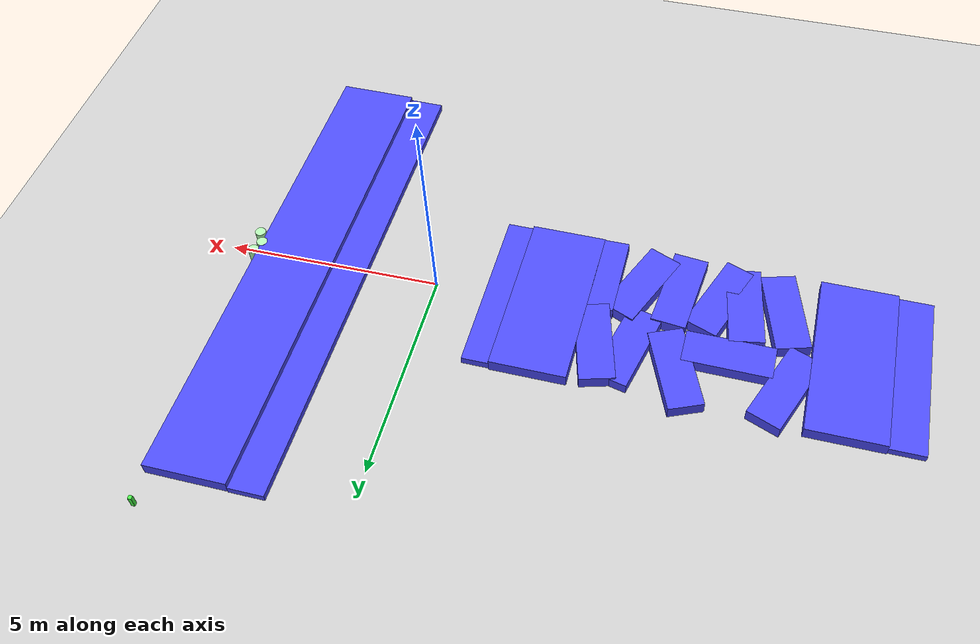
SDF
<sdf version="1.7">
 <world name="default">
  <model name="ground_plane">
   <static>1</static>
   <link name="link">
    <collision name="collision">
     <geometry><plane><normal>0 0 1</normal><size>100 100</size></plane></geometry>
     <surface><friction><ode><mu>100</mu><mu2>50</mu2></ode></friction></surface>
    </collision>
    <visual name="visual">
     <cast_shadows>0</cast_shadows>
     <geometry><plane><normal>0 0 1</normal><size>100 100</size></plane></geometry>
     <material>
      <script><uri>file://media/materials/scripts/gazebo.material</uri><name>Gazebo/Grey</name></script>
     </material>
    </visual>
   </link>
  </model>
  <model name="ban_400_80_30">
   <link name="link">
    <inertial>
     <mass>1</mass>
     <inertia>
      <ixx>0.166667</ixx>
      <ixy>0</ixy>
      <ixz>0</ixz>
      <iyy>0.166667</iyy>
      <iyz>0</iyz>
      <izz>0.166667</izz>
     </inertia>
    </inertial>
    <visual name="visual">
     <geometry><box><size>11.7457 0.8 0.3</size></box></geometry>
     <material>
      <script><name>Gazebo/Grey</name><uri>file://media/materials/scripts/gazebo.material</uri></script>
      <shader type="pixel"><normal_map>__default__</normal_map></shader>
      <ambient>0.3 0.3 1 1</ambient>
      <diffuse>0.7 0.7 0.7 1</diffuse>
      <specular>0.01 0.01 0.01 1</specular>
      <emissive>0 0 0 1</emissive>
     </material>
    </visual>
    <collision name="collision">
     <geometry><box><size>11.7457 0.8 0.3</size></box></geometry>
     <surface>
      <friction>
       <ode><mu>1</mu><mu2>1</mu2><fdir1>0 0 0</fdir1><slip1>0</slip1><slip2>0</slip2></ode>
       <torsional>
        <coefficient>1</coefficient>
        <patch_radius>0</patch_radius>
        <surface_radius>0</surface_radius>
        <use_patch_radius>1</use_patch_radius>
        <ode><slip>0</slip></ode>
       </torsional>
      </friction>
      <bounce><restitution_coefficient>0</restitution_coefficient><threshold>1e+06</threshold></bounce>
      <contact>
       <collide_without_contact>0</collide_without_contact>
       <collide_without_contact_bitmask>1</collide_without_contact_bitmask>
       <collide_bitmask>1</collide_bitmask>
       <ode>
        <soft_cfm>0</soft_cfm>
        <soft_erp>0.2</soft_erp>
        <kp>1e+13</kp>
        <kd>1</kd>
        <max_vel>0.01</max_vel>
        <min_depth>0</min_depth>
       </ode>
       <bullet>
        <split_impulse>1</split_impulse>
        <split_impulse_penetration_threshold>-0.01</split_impulse_penetration_threshold>
        <soft_cfm>0</soft_cfm>
        <soft_erp>0.2</soft_erp>
        <kp>1e+13</kp>
        <kd>1</kd>
       </bullet>
      </contact>
     </surface>
    </collision>
   </link>
   <static>1</static>
   <pose>2.06865 0.167126 0 0 -0 1.55763</pose>
  </model>
  <model name="ban_400_80_30_clone_1_clone_0">
   <link name="link">
    <inertial>
     <mass>1</mass>
     <inertia>
      <ixx>0.166667</ixx>
      <ixy>0</ixy>
      <ixz>0</ixz>
      <iyy>0.166667</iyy>
      <iyz>0</iyz>
      <izz>0.166667</izz>
     </inertia>
    </inertial>
    <visual name="visual">
     <geometry><box><size>4 0.8 0.3</size></box></geometry>
     <material>
      <script><name>Gazebo/Grey</name><uri>file://media/materials/scripts/gazebo.material</uri></script>
      <shader type="pixel"><normal_map>__default__</normal_map></shader>
      <ambient>0.3 0.3 1 1</ambient>
      <diffuse>0.7 0.7 0.7 1</diffuse>
      <specular>0.01 0.01 0.01 1</specular>
      <emissive>0 0 0 1</emissive>
     </material>
    </visual>
    <collision name="collision">
     <geometry><box><size>4 0.8 0.3</size></box></geometry>
     <surface>
      <friction>
       <ode><mu>1</mu><mu2>1</mu2><fdir1>0 0 0</fdir1><slip1>0</slip1><slip2>0</slip2></ode>
       <torsional>
        <coefficient>1</coefficient>
        <patch_radius>0</patch_radius>
        <surface_radius>0</surface_radius>
        <use_patch_radius>1</use_patch_radius>
        <ode><slip>0</slip></ode>
       </torsional>
      </friction>
      <bounce><restitution_coefficient>0</restitution_coefficient><threshold>1e+06</threshold></bounce>
      <contact>
       <collide_without_contact>0</collide_without_contact>
       <collide_without_contact_bitmask>1</collide_without_contact_bitmask>
       <collide_bitmask>1</collide_bitmask>
       <ode>
        <soft_cfm>0</soft_cfm>
        <soft_erp>0.2</soft_erp>
        <kp>1e+13</kp>
        <kd>1</kd>
        <max_vel>0.01</max_vel>
        <min_depth>0</min_depth>
       </ode>
       <bullet>
        <split_impulse>1</split_impulse>
        <split_impulse_penetration_threshold>-0.01</split_impulse_penetration_threshold>
        <soft_cfm>0</soft_cfm>
        <soft_erp>0.2</soft_erp>
        <kp>1e+13</kp>
        <kd>1</kd>
       </bullet>
      </contact>
     </surface>
    </collision>
   </link>
   <static>1</static>
   <pose>-1.57197 -0.048811 0.008853 0 -0 1.55763</pose>
  </model>
  <model name="ban_400_80_30_clone_1_clone_1">
   <link name="link">
    <inertial>
     <mass>1</mass>
     <inertia>
      <ixx>0.166667</ixx>
      <ixy>0</ixy>
      <ixz>0</ixz>
      <iyy>0.166667</iyy>
      <iyz>0</iyz>
      <izz>0.166667</izz>
     </inertia>
    </inertial>
    <visual name="visual">
     <geometry><box><size>4 1.73091 0.3</size></box></geometry>
     <material>
      <script><name>Gazebo/Grey</name><uri>file://media/materials/scripts/gazebo.material</uri></script>
      <shader type="pixel"><normal_map>__default__</normal_map></shader>
      <ambient>0.3 0.3 1 1</ambient>
      <diffuse>0.7 0.7 0.7 1</diffuse>
      <specular>0.01 0.01 0.01 1</specular>
      <emissive>0 0 0 1</emissive>
     </material>
    </visual>
    <collision name="collision">
     <geometry><box><size>4 1.73091 0.3</size></box></geometry>
     <surface>
      <friction>
       <ode><mu>1</mu><mu2>1</mu2><fdir1>0 0 0</fdir1><slip1>0</slip1><slip2>0</slip2></ode>
       <torsional>
        <coefficient>1</coefficient>
        <patch_radius>0</patch_radius>
        <surface_radius>0</surface_radius>
        <use_patch_radius>1</use_patch_radius>
        <ode><slip>0</slip></ode>
       </torsional>
      </friction>
      <bounce><restitution_coefficient>0</restitution_coefficient><threshold>1e+06</threshold></bounce>
      <contact>
       <collide_without_contact>0</collide_without_contact>
       <collide_without_contact_bitmask>1</collide_without_contact_bitmask>
       <collide_bitmask>1</collide_bitmask>
       <ode>
        <soft_cfm>0</soft_cfm>
        <soft_erp>0.2</soft_erp>
        <kp>1e+13</kp>
        <kd>1</kd>
        <max_vel>0.01</max_vel>
        <min_depth>0</min_depth>
       </ode>
       <bullet>
        <split_impulse>1</split_impulse>
        <split_impulse_penetration_threshold>-0.01</split_impulse_penetration_threshold>
        <soft_cfm>0</soft_cfm>
        <soft_erp>0.2</soft_erp>
        <kp>1e+13</kp>
        <kd>1</kd>
       </bullet>
      </contact>
     </surface>
    </collision>
   </link>
   <static>1</static>
   <pose>-2.65947 -0.004283 0.133573 0 -0 1.55763</pose>
  </model>
  <model name="ban_200_80_30_clone_8">
   <link name="link">
    <inertial>
     <mass>1</mass>
     <inertia>
      <ixx>0.166667</ixx>
      <ixy>0</ixy>
      <ixz>0</ixz>
      <iyy>0.166667</iyy>
      <iyz>0</iyz>
      <izz>0.166667</izz>
     </inertia>
    </inertial>
    <visual name="visual">
     <geometry><box><size>2 0.8 0.3</size></box></geometry>
     <material>
      <script><name>Gazebo/Grey</name><uri>file://media/materials/scripts/gazebo.material</uri></script>
      <shader type="pixel"><normal_map>__default__</normal_map></shader>
      <ambient>0.3 0.3 1 1</ambient>
      <diffuse>0.7 0.7 0.7 1</diffuse>
      <specular>0.01 0.01 0.01 1</specular>
      <emissive>0 0 0 1</emissive>
     </material>
    </visual>
    <collision name="collision">
     <geometry><box><size>2 0.8 0.3</size></box></geometry>
     <surface>
      <friction>
       <ode><mu>1</mu><mu2>1</mu2><fdir1>0 0 0</fdir1><slip1>0</slip1><slip2>0</slip2></ode>
       <torsional>
        <coefficient>1</coefficient>
        <patch_radius>0</patch_radius>
        <surface_radius>0</surface_radius>
        <use_patch_radius>1</use_patch_radius>
        <ode><slip>0</slip></ode>
       </torsional>
      </friction>
      <bounce><restitution_coefficient>0</restitution_coefficient><threshold>1e+06</threshold></bounce>
      <contact>
       <collide_without_contact>0</collide_without_contact>
       <collide_without_contact_bitmask>1</collide_without_contact_bitmask>
       <collide_bitmask>1</collide_bitmask>
       <ode>
        <soft_cfm>0</soft_cfm>
        <soft_erp>0.2</soft_erp>
        <kp>1e+13</kp>
        <kd>1</kd>
        <max_vel>0.01</max_vel>
        <min_depth>0</min_depth>
       </ode>
       <bullet>
        <split_impulse>1</split_impulse>
        <split_impulse_penetration_threshold>-0.01</split_impulse_penetration_threshold>
        <soft_cfm>0</soft_cfm>
        <soft_erp>0.2</soft_erp>
        <kp>1e+13</kp>
        <kd>1</kd>
       </bullet>
      </contact>
     </surface>
    </collision>
   </link>
   <static>1</static>
   <pose>-3.72567 -0.97739 0.127404 0 0 -1.57453</pose>
  </model>
  <model name="ban_200_80_30_clone_clone_clone">
   <link name="link">
    <inertial>
     <mass>1</mass>
     <inertia>
      <ixx>0.166667</ixx>
      <ixy>0</ixy>
      <ixz>0</ixz>
      <iyy>0.166667</iyy>
      <iyz>0</iyz>
      <izz>0.166667</izz>
     </inertia>
    </inertial>
    <visual name="visual">
     <geometry><box><size>2 0.8 0.3</size></box></geometry>
     <material>
      <script><name>Gazebo/Grey</name><uri>file://media/materials/scripts/gazebo.material</uri></script>
      <shader type="pixel"><normal_map>__default__</normal_map></shader>
      <ambient>0.3 0.3 1 1</ambient>
      <diffuse>0.7 0.7 0.7 1</diffuse>
      <specular>0.01 0.01 0.01 1</specular>
      <emissive>0 0 0 1</emissive>
     </material>
    </visual>
    <collision name="collision">
     <geometry><box><size>2 0.8 0.3</size></box></geometry>
     <surface>
      <friction>
       <ode><mu>1</mu><mu2>1</mu2><fdir1>0 0 0</fdir1><slip1>0</slip1><slip2>0</slip2></ode>
       <torsional>
        <coefficient>1</coefficient>
        <patch_radius>0</patch_radius>
        <surface_radius>0</surface_radius>
        <use_patch_radius>1</use_patch_radius>
        <ode><slip>0</slip></ode>
       </torsional>
      </friction>
      <bounce><restitution_coefficient>0</restitution_coefficient><threshold>1e+06</threshold></bounce>
      <contact>
       <collide_without_contact>0</collide_without_contact>
       <collide_without_contact_bitmask>1</collide_without_contact_bitmask>
       <collide_bitmask>1</collide_bitmask>
       <ode>
        <soft_cfm>0</soft_cfm>
        <soft_erp>0.2</soft_erp>
        <kp>1e+13</kp>
        <kd>1</kd>
        <max_vel>0.01</max_vel>
        <min_depth>0</min_depth>
       </ode>
       <bullet>
        <split_impulse>1</split_impulse>
        <split_impulse_penetration_threshold>-0.01</split_impulse_penetration_threshold>
        <soft_cfm>0</soft_cfm>
        <soft_erp>0.2</soft_erp>
        <kp>1e+13</kp>
        <kd>1</kd>
       </bullet>
      </contact>
     </surface>
    </collision>
   </link>
   <static>1</static>
   <pose>-3.88933 0.920751 0.132586 0 0 -1.30462</pose>
  </model>
  <model name="ban_200_80_30_clone_8_clone">
   <link name="link">
    <inertial>
     <mass>1</mass>
     <inertia>
      <ixx>0.166667</ixx>
      <ixy>0</ixy>
      <ixz>0</ixz>
      <iyy>0.166667</iyy>
      <iyz>0</iyz>
      <izz>0.166667</izz>
     </inertia>
    </inertial>
    <visual name="visual">
     <geometry><box><size>2 0.8 0.3</size></box></geometry>
     <material>
      <script><name>Gazebo/Grey</name><uri>file://media/materials/scripts/gazebo.material</uri></script>
      <shader type="pixel"><normal_map>__default__</normal_map></shader>
      <ambient>0.3 0.3 1 1</ambient>
      <diffuse>0.7 0.7 0.7 1</diffuse>
      <specular>0.01 0.01 0.01 1</specular>
      <emissive>0 0 0 1</emissive>
     </material>
    </visual>
    <collision name="collision">
     <geometry><box><size>2 0.8 0.3</size></box></geometry>
     <surface>
      <friction>
       <ode><mu>1</mu><mu2>1</mu2><fdir1>0 0 0</fdir1><slip1>0</slip1><slip2>0</slip2></ode>
       <torsional>
        <coefficient>1</coefficient>
        <patch_radius>0</patch_radius>
        <surface_radius>0</surface_radius>
        <use_patch_radius>1</use_patch_radius>
        <ode><slip>0</slip></ode>
       </torsional>
      </friction>
      <bounce><restitution_coefficient>0</restitution_coefficient><threshold>1e+06</threshold></bounce>
      <contact>
       <collide_without_contact>0</collide_without_contact>
       <collide_without_contact_bitmask>1</collide_without_contact_bitmask>
       <collide_bitmask>1</collide_bitmask>
       <ode>
        <soft_cfm>0</soft_cfm>
        <soft_erp>0.2</soft_erp>
        <kp>1e+13</kp>
        <kd>1</kd>
        <max_vel>0.01</max_vel>
        <min_depth>0</min_depth>
       </ode>
       <bullet>
        <split_impulse>1</split_impulse>
        <split_impulse_penetration_threshold>-0.01</split_impulse_penetration_threshold>
        <soft_cfm>0</soft_cfm>
        <soft_erp>0.2</soft_erp>
        <kp>1e+13</kp>
        <kd>1</kd>
       </bullet>
      </contact>
     </surface>
    </collision>
   </link>
   <static>1</static>
   <pose>-4.62871 -0.899774 0.127404 0 0 -1.97874</pose>
  </model>
  <model name="ban_200_80_30_clone_8_clone_0">
   <link name="link">
    <inertial>
     <mass>1</mass>
     <inertia>
      <ixx>0.166667</ixx>
      <ixy>0</ixy>
      <ixz>0</ixz>
      <iyy>0.166667</iyy>
      <iyz>0</iyz>
      <izz>0.166667</izz>
     </inertia>
    </inertial>
    <visual name="visual">
     <geometry><box><size>2 0.8 0.3</size></box></geometry>
     <material>
      <script><name>Gazebo/Grey</name><uri>file://media/materials/scripts/gazebo.material</uri></script>
      <shader type="pixel"><normal_map>__default__</normal_map></shader>
      <ambient>0.3 0.3 1 1</ambient>
      <diffuse>0.7 0.7 0.7 1</diffuse>
      <specular>0.01 0.01 0.01 1</specular>
      <emissive>0 0 0 1</emissive>
     </material>
    </visual>
    <collision name="collision">
     <geometry><box><size>2 0.8 0.3</size></box></geometry>
     <surface>
      <friction>
       <ode><mu>1</mu><mu2>1</mu2><fdir1>0 0 0</fdir1><slip1>0</slip1><slip2>0</slip2></ode>
       <torsional>
        <coefficient>1</coefficient>
        <patch_radius>0</patch_radius>
        <surface_radius>0</surface_radius>
        <use_patch_radius>1</use_patch_radius>
        <ode><slip>0</slip></ode>
       </torsional>
      </friction>
      <bounce><restitution_coefficient>0</restitution_coefficient><threshold>1e+06</threshold></bounce>
      <contact>
       <collide_without_contact>0</collide_without_contact>
       <collide_without_contact_bitmask>1</collide_without_contact_bitmask>
       <collide_bitmask>1</collide_bitmask>
       <ode>
        <soft_cfm>0</soft_cfm>
        <soft_erp>0.2</soft_erp>
        <kp>1e+13</kp>
        <kd>1</kd>
        <max_vel>0.01</max_vel>
        <min_depth>0</min_depth>
       </ode>
       <bullet>
        <split_impulse>1</split_impulse>
        <split_impulse_penetration_threshold>-0.01</split_impulse_penetration_threshold>
        <soft_cfm>0</soft_cfm>
        <soft_erp>0.2</soft_erp>
        <kp>1e+13</kp>
        <kd>1</kd>
       </bullet>
      </contact>
     </surface>
    </collision>
   </link>
   <static>1</static>
   <pose>-4.633 0.844905 0.090917 0 0 -1.81122</pose>
  </model>
  <model name="ban_200_80_30_clone_8_clone_1">
   <link name="link">
    <inertial>
     <mass>1</mass>
     <inertia>
      <ixx>0.166667</ixx>
      <ixy>0</ixy>
      <ixz>0</ixz>
      <iyy>0.166667</iyy>
      <iyz>0</iyz>
      <izz>0.166667</izz>
     </inertia>
    </inertial>
    <visual name="visual">
     <geometry><box><size>2 0.8 0.3</size></box></geometry>
     <material>
      <script><name>Gazebo/Grey</name><uri>file://media/materials/scripts/gazebo.material</uri></script>
      <shader type="pixel"><normal_map>__default__</normal_map></shader>
      <ambient>0.3 0.3 1 1</ambient>
      <diffuse>0.7 0.7 0.7 1</diffuse>
      <specular>0.01 0.01 0.01 1</specular>
      <emissive>0 0 0 1</emissive>
     </material>
    </visual>
    <collision name="collision">
     <geometry><box><size>2 0.8 0.3</size></box></geometry>
     <surface>
      <friction>
       <ode><mu>1</mu><mu2>1</mu2><fdir1>0 0 0</fdir1><slip1>0</slip1><slip2>0</slip2></ode>
       <torsional>
        <coefficient>1</coefficient>
        <patch_radius>0</patch_radius>
        <surface_radius>0</surface_radius>
        <use_patch_radius>1</use_patch_radius>
        <ode><slip>0</slip></ode>
       </torsional>
      </friction>
      <bounce><restitution_coefficient>0</restitution_coefficient><threshold>1e+06</threshold></bounce>
      <contact>
       <collide_without_contact>0</collide_without_contact>
       <collide_without_contact_bitmask>1</collide_without_contact_bitmask>
       <collide_bitmask>1</collide_bitmask>
       <ode>
        <soft_cfm>0</soft_cfm>
        <soft_erp>0.2</soft_erp>
        <kp>1e+13</kp>
        <kd>1</kd>
        <max_vel>0.01</max_vel>
        <min_depth>0</min_depth>
       </ode>
       <bullet>
        <split_impulse>1</split_impulse>
        <split_impulse_penetration_threshold>-0.01</split_impulse_penetration_threshold>
        <soft_cfm>0</soft_cfm>
        <soft_erp>0.2</soft_erp>
        <kp>1e+13</kp>
        <kd>1</kd>
       </bullet>
      </contact>
     </surface>
    </collision>
   </link>
   <static>1</static>
   <pose>-5.73665 1.22455 0.127404 0 0 -1.18182</pose>
  </model>
  <model name="ban_200_80_30_clone_8_clone_2">
   <link name="link">
    <inertial>
     <mass>1</mass>
     <inertia>
      <ixx>0.166667</ixx>
      <ixy>0</ixy>
      <ixz>0</ixz>
      <iyy>0.166667</iyy>
      <iyz>0</iyz>
      <izz>0.166667</izz>
     </inertia>
    </inertial>
    <visual name="visual">
     <geometry><box><size>2 0.8 0.3</size></box></geometry>
     <material>
      <script><name>Gazebo/Grey</name><uri>file://media/materials/scripts/gazebo.material</uri></script>
      <shader type="pixel"><normal_map>__default__</normal_map></shader>
      <ambient>0.3 0.3 1 1</ambient>
      <diffuse>0.7 0.7 0.7 1</diffuse>
      <specular>0.01 0.01 0.01 1</specular>
      <emissive>0 0 0 1</emissive>
     </material>
    </visual>
    <collision name="collision">
     <geometry><box><size>2 0.8 0.3</size></box></geometry>
     <surface>
      <friction>
       <ode><mu>1</mu><mu2>1</mu2><fdir1>0 0 0</fdir1><slip1>0</slip1><slip2>0</slip2></ode>
       <torsional>
        <coefficient>1</coefficient>
        <patch_radius>0</patch_radius>
        <surface_radius>0</surface_radius>
        <use_patch_radius>1</use_patch_radius>
        <ode><slip>0</slip></ode>
       </torsional>
      </friction>
      <bounce><restitution_coefficient>0</restitution_coefficient><threshold>1e+06</threshold></bounce>
      <contact>
       <collide_without_contact>0</collide_without_contact>
       <collide_without_contact_bitmask>1</collide_without_contact_bitmask>
       <collide_bitmask>1</collide_bitmask>
       <ode>
        <soft_cfm>0</soft_cfm>
        <soft_erp>0.2</soft_erp>
        <kp>1e+13</kp>
        <kd>1</kd>
        <max_vel>0.01</max_vel>
        <min_depth>0</min_depth>
       </ode>
       <bullet>
        <split_impulse>1</split_impulse>
        <split_impulse_penetration_threshold>-0.01</split_impulse_penetration_threshold>
        <soft_cfm>0</soft_cfm>
        <soft_erp>0.2</soft_erp>
        <kp>1e+13</kp>
        <kd>1</kd>
       </bullet>
      </contact>
     </surface>
    </collision>
   </link>
   <static>1</static>
   <pose>-5.49836 -0.904422 0.127404 0 0 -1.68677</pose>
  </model>
  <model name="ban_200_80_30_clone_8_clone_3">
   <link name="link">
    <inertial>
     <mass>1</mass>
     <inertia>
      <ixx>0.166667</ixx>
      <ixy>0</ixy>
      <ixz>0</ixz>
      <iyy>0.166667</iyy>
      <iyz>0</iyz>
      <izz>0.166667</izz>
     </inertia>
    </inertial>
    <visual name="visual">
     <geometry><box><size>2 0.8 0.3</size></box></geometry>
     <material>
      <script><name>Gazebo/Grey</name><uri>file://media/materials/scripts/gazebo.material</uri></script>
      <shader type="pixel"><normal_map>__default__</normal_map></shader>
      <ambient>0.3 0.3 1 1</ambient>
      <diffuse>0.7 0.7 0.7 1</diffuse>
      <specular>0.01 0.01 0.01 1</specular>
      <emissive>0 0 0 1</emissive>
     </material>
    </visual>
    <collision name="collision">
     <geometry><box><size>2 0.8 0.3</size></box></geometry>
     <surface>
      <friction>
       <ode><mu>1</mu><mu2>1</mu2><fdir1>0 0 0</fdir1><slip1>0</slip1><slip2>0</slip2></ode>
       <torsional>
        <coefficient>1</coefficient>
        <patch_radius>0</patch_radius>
        <surface_radius>0</surface_radius>
        <use_patch_radius>1</use_patch_radius>
        <ode><slip>0</slip></ode>
       </torsional>
      </friction>
      <bounce><restitution_coefficient>0</restitution_coefficient><threshold>1e+06</threshold></bounce>
      <contact>
       <collide_without_contact>0</collide_without_contact>
       <collide_without_contact_bitmask>1</collide_without_contact_bitmask>
       <collide_bitmask>1</collide_bitmask>
       <ode>
        <soft_cfm>0</soft_cfm>
        <soft_erp>0.2</soft_erp>
        <kp>1e+13</kp>
        <kd>1</kd>
        <max_vel>0.01</max_vel>
        <min_depth>0</min_depth>
       </ode>
       <bullet>
        <split_impulse>1</split_impulse>
        <split_impulse_penetration_threshold>-0.01</split_impulse_penetration_threshold>
        <soft_cfm>0</soft_cfm>
        <soft_erp>0.2</soft_erp>
        <kp>1e+13</kp>
        <kd>1</kd>
       </bullet>
      </contact>
     </surface>
    </collision>
   </link>
   <static>1</static>
   <pose>-6.45605 -0.8792 0.127404 0 0 -1.94218</pose>
  </model>
  <model name="ban_200_80_30_clone_8_clone_clone">
   <link name="link">
    <inertial>
     <mass>1</mass>
     <inertia>
      <ixx>0.166667</ixx>
      <ixy>0</ixy>
      <ixz>0</ixz>
      <iyy>0.166667</iyy>
      <iyz>0</iyz>
      <izz>0.166667</izz>
     </inertia>
    </inertial>
    <visual name="visual">
     <geometry><box><size>2 0.8 0.3</size></box></geometry>
     <material>
      <script><name>Gazebo/Grey</name><uri>file://media/materials/scripts/gazebo.material</uri></script>
      <shader type="pixel"><normal_map>__default__</normal_map></shader>
      <ambient>0.3 0.3 1 1</ambient>
      <diffuse>0.7 0.7 0.7 1</diffuse>
      <specular>0.01 0.01 0.01 1</specular>
      <emissive>0 0 0 1</emissive>
     </material>
    </visual>
    <collision name="collision">
     <geometry><box><size>2 0.8 0.3</size></box></geometry>
     <surface>
      <friction>
       <ode><mu>1</mu><mu2>1</mu2><fdir1>0 0 0</fdir1><slip1>0</slip1><slip2>0</slip2></ode>
       <torsional>
        <coefficient>1</coefficient>
        <patch_radius>0</patch_radius>
        <surface_radius>0</surface_radius>
        <use_patch_radius>1</use_patch_radius>
        <ode><slip>0</slip></ode>
       </torsional>
      </friction>
      <bounce><restitution_coefficient>0</restitution_coefficient><threshold>1e+06</threshold></bounce>
      <contact>
       <collide_without_contact>0</collide_without_contact>
       <collide_without_contact_bitmask>1</collide_without_contact_bitmask>
       <collide_bitmask>1</collide_bitmask>
       <ode>
        <soft_cfm>0</soft_cfm>
        <soft_erp>0.2</soft_erp>
        <kp>1e+13</kp>
        <kd>1</kd>
        <max_vel>0.01</max_vel>
        <min_depth>0</min_depth>
       </ode>
       <bullet>
        <split_impulse>1</split_impulse>
        <split_impulse_penetration_threshold>-0.01</split_impulse_penetration_threshold>
        <soft_cfm>0</soft_cfm>
        <soft_erp>0.2</soft_erp>
        <kp>1e+13</kp>
        <kd>1</kd>
       </bullet>
      </contact>
     </surface>
    </collision>
   </link>
   <static>1</static>
   <pose>-6.81115 0.60983 0.127404 0 -0 3.12114</pose>
  </model>
  <model name="ban_200_80_30_clone_8_clone_4">
   <link name="link">
    <inertial>
     <mass>1</mass>
     <inertia>
      <ixx>0.166667</ixx>
      <ixy>0</ixy>
      <ixz>0</ixz>
      <iyy>0.166667</iyy>
      <iyz>0</iyz>
      <izz>0.166667</izz>
     </inertia>
    </inertial>
    <visual name="visual">
     <geometry><box><size>2 0.8 0.3</size></box></geometry>
     <material>
      <script><name>Gazebo/Grey</name><uri>file://media/materials/scripts/gazebo.material</uri></script>
      <shader type="pixel"><normal_map>__default__</normal_map></shader>
      <ambient>0.3 0.3 1 1</ambient>
      <diffuse>0.7 0.7 0.7 1</diffuse>
      <specular>0.01 0.01 0.01 1</specular>
      <emissive>0 0 0 1</emissive>
     </material>
    </visual>
    <collision name="collision">
     <geometry><box><size>2 0.8 0.3</size></box></geometry>
     <surface>
      <friction>
       <ode><mu>1</mu><mu2>1</mu2><fdir1>0 0 0</fdir1><slip1>0</slip1><slip2>0</slip2></ode>
       <torsional>
        <coefficient>1</coefficient>
        <patch_radius>0</patch_radius>
        <surface_radius>0</surface_radius>
        <use_patch_radius>1</use_patch_radius>
        <ode><slip>0</slip></ode>
       </torsional>
      </friction>
      <bounce><restitution_coefficient>0</restitution_coefficient><threshold>1e+06</threshold></bounce>
      <contact>
       <collide_without_contact>0</collide_without_contact>
       <collide_without_contact_bitmask>1</collide_without_contact_bitmask>
       <collide_bitmask>1</collide_bitmask>
       <ode>
        <soft_cfm>0</soft_cfm>
        <soft_erp>0.2</soft_erp>
        <kp>1e+13</kp>
        <kd>1</kd>
        <max_vel>0.01</max_vel>
        <min_depth>0</min_depth>
       </ode>
       <bullet>
        <split_impulse>1</split_impulse>
        <split_impulse_penetration_threshold>-0.01</split_impulse_penetration_threshold>
        <soft_cfm>0</soft_cfm>
        <soft_erp>0.2</soft_erp>
        <kp>1e+13</kp>
        <kd>1</kd>
       </bullet>
      </contact>
     </surface>
    </collision>
   </link>
   <static>1</static>
   <pose>-6.98812 -0.792101 0.127404 0 0 -1.40582</pose>
  </model>
  <model name="ban_200_80_30_clone_8_clone_5">
   <link name="link">
    <inertial>
     <mass>1</mass>
     <inertia>
      <ixx>0.166667</ixx>
      <ixy>0</ixy>
      <ixz>0</ixz>
      <iyy>0.166667</iyy>
      <iyz>0</iyz>
      <izz>0.166667</izz>
     </inertia>
    </inertial>
    <visual name="visual">
     <geometry><box><size>2 0.8 0.3</size></box></geometry>
     <material>
      <script><name>Gazebo/Grey</name><uri>file://media/materials/scripts/gazebo.material</uri></script>
      <shader type="pixel"><normal_map>__default__</normal_map></shader>
      <ambient>0.3 0.3 1 1</ambient>
      <diffuse>0.7 0.7 0.7 1</diffuse>
      <specular>0.01 0.01 0.01 1</specular>
      <emissive>0 0 0 1</emissive>
     </material>
    </visual>
    <collision name="collision">
     <geometry><box><size>2 0.8 0.3</size></box></geometry>
     <surface>
      <friction>
       <ode><mu>1</mu><mu2>1</mu2><fdir1>0 0 0</fdir1><slip1>0</slip1><slip2>0</slip2></ode>
       <torsional>
        <coefficient>1</coefficient>
        <patch_radius>0</patch_radius>
        <surface_radius>0</surface_radius>
        <use_patch_radius>1</use_patch_radius>
        <ode><slip>0</slip></ode>
       </torsional>
      </friction>
      <bounce><restitution_coefficient>0</restitution_coefficient><threshold>1e+06</threshold></bounce>
      <contact>
       <collide_without_contact>0</collide_without_contact>
       <collide_without_contact_bitmask>1</collide_without_contact_bitmask>
       <collide_bitmask>1</collide_bitmask>
       <ode>
        <soft_cfm>0</soft_cfm>
        <soft_erp>0.2</soft_erp>
        <kp>1e+13</kp>
        <kd>1</kd>
        <max_vel>0.01</max_vel>
        <min_depth>0</min_depth>
       </ode>
       <bullet>
        <split_impulse>1</split_impulse>
        <split_impulse_penetration_threshold>-0.01</split_impulse_penetration_threshold>
        <soft_cfm>0</soft_cfm>
        <soft_erp>0.2</soft_erp>
        <kp>1e+13</kp>
        <kd>1</kd>
       </bullet>
      </contact>
     </surface>
    </collision>
   </link>
   <static>1</static>
   <pose>-7.894 -0.825962 0.127404 0 0 -1.29358</pose>
  </model>
  <model name="ban_400_80_30_clone_1_clone_1_clone">
   <link name="link">
    <inertial>
     <mass>1</mass>
     <inertia>
      <ixx>0.166667</ixx>
      <ixy>0</ixy>
      <ixz>0</ixz>
      <iyy>0.166667</iyy>
      <iyz>0</iyz>
      <izz>0.166667</izz>
     </inertia>
    </inertial>
    <visual name="visual">
     <geometry><box><size>4 1.74854 0.3</size></box></geometry>
     <material>
      <script><name>Gazebo/Grey</name><uri>file://media/materials/scripts/gazebo.material</uri></script>
      <shader type="pixel"><normal_map>__default__</normal_map></shader>
      <ambient>0.3 0.3 1 1</ambient>
      <diffuse>0.7 0.7 0.7 1</diffuse>
      <specular>0.01 0.01 0.01 1</specular>
      <emissive>0 0 0 1</emissive>
     </material>
    </visual>
    <collision name="collision">
     <geometry><box><size>4 1.74854 0.3</size></box></geometry>
     <surface>
      <friction>
       <ode><mu>1</mu><mu2>1</mu2><fdir1>0 0 0</fdir1><slip1>0</slip1><slip2>0</slip2></ode>
       <torsional>
        <coefficient>1</coefficient>
        <patch_radius>0</patch_radius>
        <surface_radius>0</surface_radius>
        <use_patch_radius>1</use_patch_radius>
        <ode><slip>0</slip></ode>
       </torsional>
      </friction>
      <bounce><restitution_coefficient>0</restitution_coefficient><threshold>1e+06</threshold></bounce>
      <contact>
       <collide_without_contact>0</collide_without_contact>
       <collide_without_contact_bitmask>1</collide_without_contact_bitmask>
       <collide_bitmask>1</collide_bitmask>
       <ode>
        <soft_cfm>0</soft_cfm>
        <soft_erp>0.2</soft_erp>
        <kp>1e+13</kp>
        <kd>1</kd>
        <max_vel>0.01</max_vel>
        <min_depth>0</min_depth>
       </ode>
       <bullet>
        <split_impulse>1</split_impulse>
        <split_impulse_penetration_threshold>-0.01</split_impulse_penetration_threshold>
        <soft_cfm>0</soft_cfm>
        <soft_erp>0.2</soft_erp>
        <kp>1e+13</kp>
        <kd>1</kd>
       </bullet>
      </contact>
     </surface>
    </collision>
   </link>
   <static>1</static>
   <pose>-9.45404 0.147213 0.133573 0 -0 1.55763</pose>
  </model>
  <model name="ban_400_80_30_clone_1_clone_1_clone_0">
   <link name="link">
    <inertial>
     <mass>1</mass>
     <inertia>
      <ixx>0.166667</ixx>
      <ixy>0</ixy>
      <ixz>0</ixz>
      <iyy>0.166667</iyy>
      <iyz>0</iyz>
      <izz>0.166667</izz>
     </inertia>
    </inertial>
    <visual name="visual">
     <geometry><box><size>4 0.8 0.3</size></box></geometry>
     <material>
      <script><name>Gazebo/Grey</name><uri>file://media/materials/scripts/gazebo.material</uri></script>
      <shader type="pixel"><normal_map>__default__</normal_map></shader>
      <ambient>0.3 0.3 1 1</ambient>
      <diffuse>0.7 0.7 0.7 1</diffuse>
      <specular>0.01 0.01 0.01 1</specular>
      <emissive>0 0 0 1</emissive>
     </material>
    </visual>
    <collision name="collision">
     <geometry><box><size>4 0.8 0.3</size></box></geometry>
     <surface>
      <friction>
       <ode><mu>1</mu><mu2>1</mu2><fdir1>0 0 0</fdir1><slip1>0</slip1><slip2>0</slip2></ode>
       <torsional>
        <coefficient>1</coefficient>
        <patch_radius>0</patch_radius>
        <surface_radius>0</surface_radius>
        <use_patch_radius>1</use_patch_radius>
        <ode><slip>0</slip></ode>
       </torsional>
      </friction>
      <bounce><restitution_coefficient>0</restitution_coefficient><threshold>1e+06</threshold></bounce>
      <contact>
       <collide_without_contact>0</collide_without_contact>
       <collide_without_contact_bitmask>1</collide_without_contact_bitmask>
       <collide_bitmask>1</collide_bitmask>
       <ode>
        <soft_cfm>0</soft_cfm>
        <soft_erp>0.2</soft_erp>
        <kp>1e+13</kp>
        <kd>1</kd>
        <max_vel>0.01</max_vel>
        <min_depth>0</min_depth>
       </ode>
       <bullet>
        <split_impulse>1</split_impulse>
        <split_impulse_penetration_threshold>-0.01</split_impulse_penetration_threshold>
        <soft_cfm>0</soft_cfm>
        <soft_erp>0.2</soft_erp>
        <kp>1e+13</kp>
        <kd>1</kd>
       </bullet>
      </contact>
     </surface>
    </collision>
   </link>
   <static>1</static>
   <pose>-10.7244 0.139814 -0.002327 0 -0 1.55763</pose>
  </model>
  <model name="ban_200_80_30_clone_8_clone_5_clone">
   <link name="link">
    <inertial>
     <mass>1</mass>
     <inertia>
      <ixx>0.166667</ixx>
      <ixy>0</ixy>
      <ixz>0</ixz>
      <iyy>0.166667</iyy>
      <iyz>0</iyz>
      <izz>0.166667</izz>
     </inertia>
    </inertial>
    <visual name="visual">
     <geometry><box><size>2 0.8 0.3</size></box></geometry>
     <material>
      <script><name>Gazebo/Grey</name><uri>file://media/materials/scripts/gazebo.material</uri></script>
      <shader type="pixel"><normal_map>__default__</normal_map></shader>
      <ambient>0.3 0.3 1 1</ambient>
      <diffuse>0.7 0.7 0.7 1</diffuse>
      <specular>0.01 0.01 0.01 1</specular>
      <emissive>0 0 0 1</emissive>
     </material>
    </visual>
    <collision name="collision">
     <geometry><box><size>2 0.8 0.3</size></box></geometry>
     <surface>
      <friction>
       <ode><mu>1</mu><mu2>1</mu2><fdir1>0 0 0</fdir1><slip1>0</slip1><slip2>0</slip2></ode>
       <torsional>
        <coefficient>1</coefficient>
        <patch_radius>0</patch_radius>
        <surface_radius>0</surface_radius>
        <use_patch_radius>1</use_patch_radius>
        <ode><slip>0</slip></ode>
       </torsional>
      </friction>
      <bounce><restitution_coefficient>0</restitution_coefficient><threshold>1e+06</threshold></bounce>
      <contact>
       <collide_without_contact>0</collide_without_contact>
       <collide_without_contact_bitmask>1</collide_without_contact_bitmask>
       <collide_bitmask>1</collide_bitmask>
       <ode>
        <soft_cfm>0</soft_cfm>
        <soft_erp>0.2</soft_erp>
        <kp>1e+13</kp>
        <kd>1</kd>
        <max_vel>0.01</max_vel>
        <min_depth>0</min_depth>
       </ode>
       <bullet>
        <split_impulse>1</split_impulse>
        <split_impulse_penetration_threshold>-0.01</split_impulse_penetration_threshold>
        <soft_cfm>0</soft_cfm>
        <soft_erp>0.2</soft_erp>
        <kp>1e+13</kp>
        <kd>1</kd>
       </bullet>
      </contact>
     </surface>
    </collision>
   </link>
   <static>1</static>
   <pose>-8.09115 1.18916 0.127404 0 0 -1.95628</pose>
  </model>
  <model name="ban_400_80_30_clone_clone">
   <link name="link">
    <inertial>
     <mass>1</mass>
     <inertia>
      <ixx>0.166667</ixx>
      <ixy>0</ixy>
      <ixz>0</ixz>
      <iyy>0.166667</iyy>
      <iyz>0</iyz>
      <izz>0.166667</izz>
     </inertia>
    </inertial>
    <visual name="visual">
     <geometry><box><size>11.703 1.83242 0.3</size></box></geometry>
     <material>
      <script><name>Gazebo/Grey</name><uri>file://media/materials/scripts/gazebo.material</uri></script>
      <shader type="pixel"><normal_map>__default__</normal_map></shader>
      <ambient>0.3 0.3 1 1</ambient>
      <diffuse>0.7 0.7 0.7 1</diffuse>
      <specular>0.01 0.01 0.01 1</specular>
      <emissive>0 0 0 1</emissive>
     </material>
    </visual>
    <collision name="collision">
     <geometry><box><size>11.703 1.83242 0.3</size></box></geometry>
     <surface>
      <friction>
       <ode><mu>1</mu><mu2>1</mu2><fdir1>0 0 0</fdir1><slip1>0</slip1><slip2>0</slip2></ode>
       <torsional>
        <coefficient>1</coefficient>
        <patch_radius>0</patch_radius>
        <surface_radius>0</surface_radius>
        <use_patch_radius>1</use_patch_radius>
        <ode><slip>0</slip></ode>
       </torsional>
      </friction>
      <bounce><restitution_coefficient>0</restitution_coefficient><threshold>1e+06</threshold></bounce>
      <contact>
       <collide_without_contact>0</collide_without_contact>
       <collide_without_contact_bitmask>1</collide_without_contact_bitmask>
       <collide_bitmask>1</collide_bitmask>
       <ode>
        <soft_cfm>0</soft_cfm>
        <soft_erp>0.2</soft_erp>
        <kp>1e+13</kp>
        <kd>1</kd>
        <max_vel>0.01</max_vel>
        <min_depth>0</min_depth>
       </ode>
       <bullet>
        <split_impulse>1</split_impulse>
        <split_impulse_penetration_threshold>-0.01</split_impulse_penetration_threshold>
        <soft_cfm>0</soft_cfm>
        <soft_erp>0.2</soft_erp>
        <kp>1e+13</kp>
        <kd>1</kd>
       </bullet>
      </contact>
     </surface>
    </collision>
   </link>
   <static>1</static>
   <pose>3.376 0.164957 0.141155 0 -0 1.55763</pose>
  </model>
  <model name="mhz_y_25_30">
   <link name="link">
    <inertial>
     <mass>1</mass>
     <inertia><ixx>0.145833</ixx><ixy>0</ixy><ixz>0</ixz><iyy>0.145833</iyy><iyz>0</iyz><izz>0.125</izz></inertia>
    </inertial>
    <visual name="visual">
     <geometry><cylinder><radius>0.125</radius><length>0.3</length></cylinder></geometry>
     <material>
      <script><name>Gazebo/Grey</name><uri>file://media/materials/scripts/gazebo.material</uri></script>
      <shader type="pixel"><normal_map>__default__</normal_map></shader>
      <ambient>0 1 0 0</ambient>
      <diffuse>0.7 1 0.7 1</diffuse>
      <specular>0.01 0.01 0.01 1</specular>
      <emissive>0 0 0 1</emissive>
     </material>
    </visual>
    <collision name="collision">
     <geometry><cylinder><radius>0.125</radius><length>0.3</length></cylinder></geometry>
     <surface>
      <friction>
       <ode><mu>1</mu><mu2>1</mu2><fdir1>0 0 0</fdir1><slip1>0</slip1><slip2>0</slip2></ode>
       <torsional>
        <coefficient>1</coefficient>
        <patch_radius>0</patch_radius>
        <surface_radius>0</surface_radius>
        <use_patch_radius>1</use_patch_radius>
        <ode><slip>0</slip></ode>
       </torsional>
      </friction>
      <bounce><restitution_coefficient>0</restitution_coefficient><threshold>1e+06</threshold></bounce>
      <contact>
       <collide_without_contact>0</collide_without_contact>
       <collide_without_contact_bitmask>1</collide_without_contact_bitmask>
       <collide_bitmask>1</collide_bitmask>
       <ode>
        <soft_cfm>0</soft_cfm>
        <soft_erp>0.2</soft_erp>
        <kp>1e+13</kp>
        <kd>1</kd>
        <max_vel>0.01</max_vel>
        <min_depth>0</min_depth>
       </ode>
       <bullet>
        <split_impulse>1</split_impulse>
        <split_impulse_penetration_threshold>-0.01</split_impulse_penetration_threshold>
        <soft_cfm>0</soft_cfm>
        <soft_erp>0.2</soft_erp>
        <kp>1e+13</kp>
        <kd>1</kd>
       </bullet>
      </contact>
     </surface>
    </collision>
   </link>
   <static>1</static>
   <pose>4.39806 0.154835 0.14679 0 -0 0</pose>
  </model>
  <model name="mhz_8_30_clone">
   <link name="link">
    <inertial>
     <mass>1</mass>
     <inertia>
      <ixx>0.166667</ixx>
      <ixy>0</ixy>
      <ixz>0</ixz>
      <iyy>0.166667</iyy>
      <iyz>0</iyz>
      <izz>0.166667</izz>
     </inertia>
    </inertial>
    <visual name="visual">
     <geometry><box><size>0.08 0.08 0.3</size></box></geometry>
     <material>
      <script><name>Gazebo/Grey</name><uri>file://media/materials/scripts/gazebo.material</uri></script>
      <shader type="pixel"><normal_map>__default__</normal_map></shader>
      <ambient>0.3 1 0.3 1</ambient>
      <diffuse>0.7 0.7 0.7 1</diffuse>
      <specular>0.01 0.01 0.01 1</specular>
      <emissive>0 0 0 1</emissive>
     </material>
    </visual>
    <collision name="collision">
     <geometry><box><size>0.08 0.08 0.3</size></box></geometry>
     <surface>
      <friction>
       <ode><mu>1</mu><mu2>1</mu2><fdir1>0 0 0</fdir1><slip1>0</slip1><slip2>0</slip2></ode>
       <torsional>
        <coefficient>1</coefficient>
        <patch_radius>0</patch_radius>
        <surface_radius>0</surface_radius>
        <use_patch_radius>1</use_patch_radius>
        <ode><slip>0</slip></ode>
       </torsional>
      </friction>
      <bounce><restitution_coefficient>0</restitution_coefficient><threshold>1e+06</threshold></bounce>
      <contact>
       <collide_without_contact>0</collide_without_contact>
       <collide_without_contact_bitmask>1</collide_without_contact_bitmask>
       <collide_bitmask>1</collide_bitmask>
       <ode>
        <soft_cfm>0</soft_cfm>
        <soft_erp>0.2</soft_erp>
        <kp>1e+13</kp>
        <kd>1</kd>
        <max_vel>0.01</max_vel>
        <min_depth>0</min_depth>
       </ode>
       <bullet>
        <split_impulse>1</split_impulse>
        <split_impulse_penetration_threshold>-0.01</split_impulse_penetration_threshold>
        <soft_cfm>0</soft_cfm>
        <soft_erp>0.2</soft_erp>
        <kp>1e+13</kp>
        <kd>1</kd>
       </bullet>
      </contact>
     </surface>
    </collision>
   </link>
   <static>1</static>
   <pose>4.25594 6.71166 0.134436 0 -0 0</pose>
  </model>
  <model name="mhz_y_25_30_clone">
   <link name="link">
    <inertial>
     <mass>1</mass>
     <inertia><ixx>0.145833</ixx><ixy>0</ixy><ixz>0</ixz><iyy>0.145833</iyy><iyz>0</iyz><izz>0.125</izz></inertia>
    </inertial>
    <visual name="visual">
     <geometry><cylinder><radius>0.125</radius><length>0.3</length></cylinder></geometry>
     <material>
      <script><name>Gazebo/Grey</name><uri>file://media/materials/scripts/gazebo.material</uri></script>
      <shader type="pixel"><normal_map>__default__</normal_map></shader>
      <ambient>0 1 0 0</ambient>
      <diffuse>0.7 1 0.7 1</diffuse>
      <specular>0.01 0.01 0.01 1</specular>
      <emissive>0 0 0 1</emissive>
     </material>
    </visual>
    <collision name="collision">
     <geometry><cylinder><radius>0.125</radius><length>0.3</length></cylinder></geometry>
     <surface>
      <friction>
       <ode><mu>1</mu><mu2>1</mu2><fdir1>0 0 0</fdir1><slip1>0</slip1><slip2>0</slip2></ode>
       <torsional>
        <coefficient>1</coefficient>
        <patch_radius>0</patch_radius>
        <surface_radius>0</surface_radius>
        <use_patch_radius>1</use_patch_radius>
        <ode><slip>0</slip></ode>
       </torsional>
      </friction>
      <bounce><restitution_coefficient>0</restitution_coefficient><threshold>1e+06</threshold></bounce>
      <contact>
       <collide_without_contact>0</collide_without_contact>
       <collide_without_contact_bitmask>1</collide_without_contact_bitmask>
       <collide_bitmask>1</collide_bitmask>
       <ode>
        <soft_cfm>0</soft_cfm>
        <soft_erp>0.2</soft_erp>
        <kp>1e+13</kp>
        <kd>1</kd>
        <max_vel>0.01</max_vel>
        <min_depth>0</min_depth>
       </ode>
       <bullet>
        <split_impulse>1</split_impulse>
        <split_impulse_penetration_threshold>-0.01</split_impulse_penetration_threshold>
        <soft_cfm>0</soft_cfm>
        <soft_erp>0.2</soft_erp>
        <kp>1e+13</kp>
        <kd>1</kd>
       </bullet>
      </contact>
     </surface>
    </collision>
   </link>
   <static>1</static>
   <pose>4.29003 -0.103136 0.14679 0 -0 0</pose>
  </model>
  <model name="mhz_y_25_30_clone_13">
   <link name="link">
    <inertial>
     <mass>1</mass>
     <inertia><ixx>0.145833</ixx><ixy>0</ixy><ixz>0</ixz><iyy>0.145833</iyy><iyz>0</iyz><izz>0.125</izz></inertia>
    </inertial>
    <visual name="visual">
     <geometry><cylinder><radius>0.125</radius><length>0.3</length></cylinder></geometry>
     <material>
      <script><name>Gazebo/Grey</name><uri>file://media/materials/scripts/gazebo.material</uri></script>
      <shader type="pixel"><normal_map>__default__</normal_map></shader>
      <ambient>0 1 0 0</ambient>
      <diffuse>0.7 1 0.7 1</diffuse>
      <specular>0.01 0.01 0.01 1</specular>
      <emissive>0 0 0 1</emissive>
     </material>
    </visual>
    <collision name="collision">
     <geometry><cylinder><radius>0.125</radius><length>0.3</length></cylinder></geometry>
     <surface>
      <friction>
       <ode><mu>1</mu><mu2>1</mu2><fdir1>0 0 0</fdir1><slip1>0</slip1><slip2>0</slip2></ode>
       <torsional>
        <coefficient>1</coefficient>
        <patch_radius>0</patch_radius>
        <surface_radius>0</surface_radius>
        <use_patch_radius>1</use_patch_radius>
        <ode><slip>0</slip></ode>
       </torsional>
      </friction>
      <bounce><restitution_coefficient>0</restitution_coefficient><threshold>1e+06</threshold></bounce>
      <contact>
       <collide_without_contact>0</collide_without_contact>
       <collide_without_contact_bitmask>1</collide_without_contact_bitmask>
       <collide_bitmask>1</collide_bitmask>
       <ode>
        <soft_cfm>0</soft_cfm>
        <soft_erp>0.2</soft_erp>
        <kp>1e+13</kp>
        <kd>1</kd>
        <max_vel>0.01</max_vel>
        <min_depth>0</min_depth>
       </ode>
       <bullet>
        <split_impulse>1</split_impulse>
        <split_impulse_penetration_threshold>-0.01</split_impulse_penetration_threshold>
        <soft_cfm>0</soft_cfm>
        <soft_erp>0.2</soft_erp>
        <kp>1e+13</kp>
        <kd>1</kd>
       </bullet>
      </contact>
     </surface>
    </collision>
   </link>
   <static>1</static>
   <pose>4.44039 -0.383538 0.14679 0 -0 0</pose>
  </model>
 </world>
</sdf>
